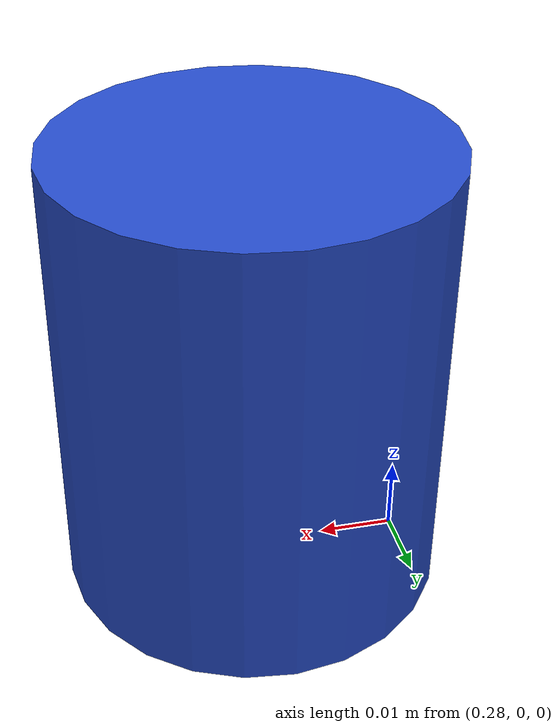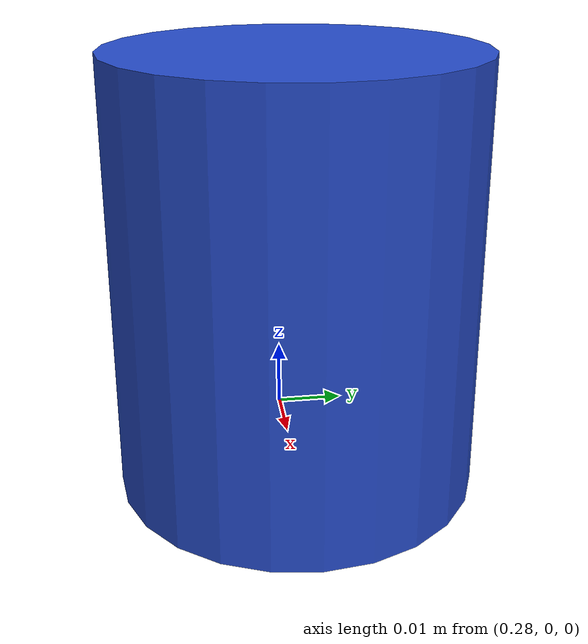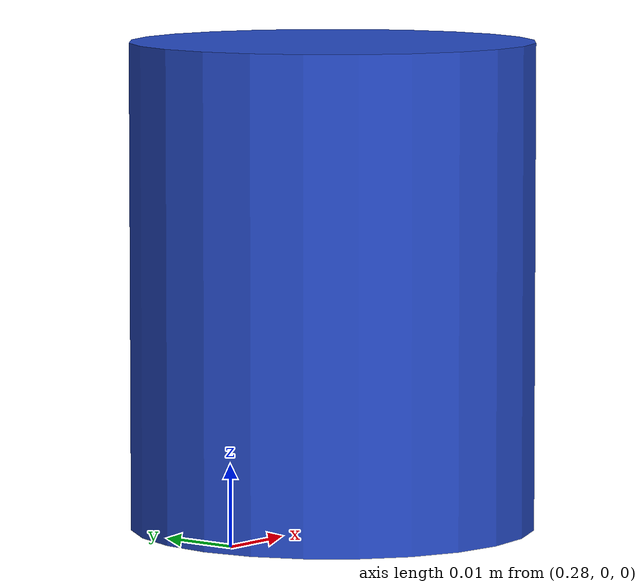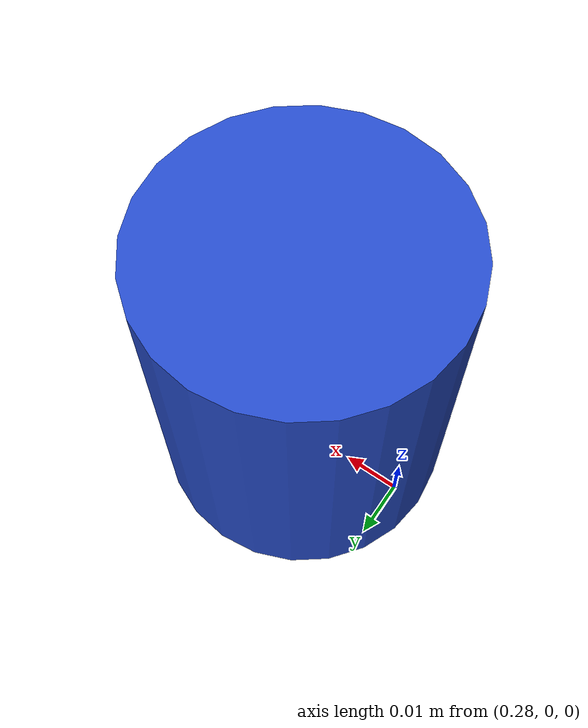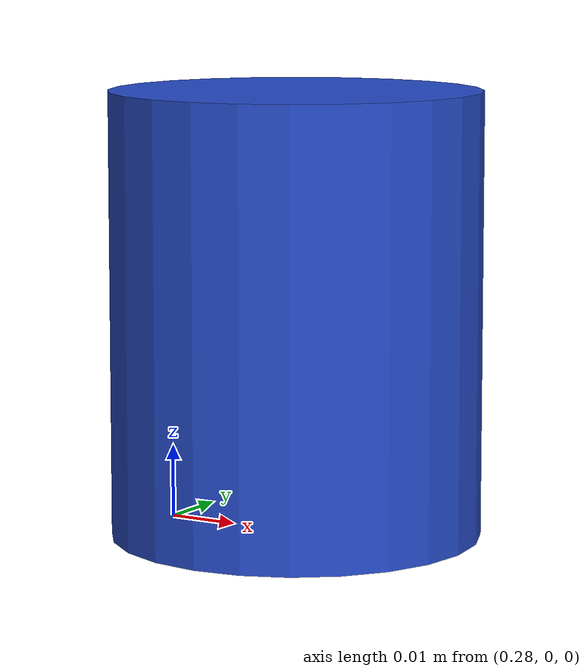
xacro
<?xml version="1.0"?>
<robot name="cylinder1">

<link name="base_link">
  <collision>
    <origin xyz="0.3 0 0.03" rpy="0 0 0"/>
    <geometry>
      <cylinder length="0.06" radius="0.025" />
    </geometry>
  </collision>

  <visual>
    <origin xyz="0.3 0 0.03" rpy="0 0 0"/>
    <geometry>
      <cylinder length="0.06" radius="0.025" />
    </geometry>
  </visual>

  <inertial>
    <origin xyz="0.3 0 0.03" rpy="0 0 0" />
    <mass value="0.05" />
    <inertia
      ixx="0.05" ixy="0.0"  ixz="0.0"
      iyy="0.05" iyz="0.0"
      izz="0.05" />
  </inertial>
  </link>

<gazebo reference="base_link">
  <material>Gazebo/Blue</material>
    <mu1>10</mu1>
    <mu2>10</mu2>
</gazebo>

</robot>
